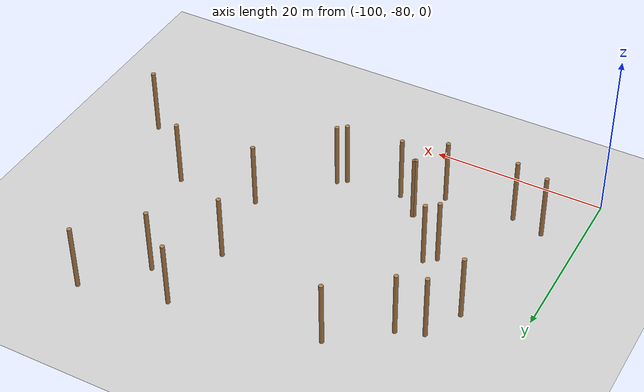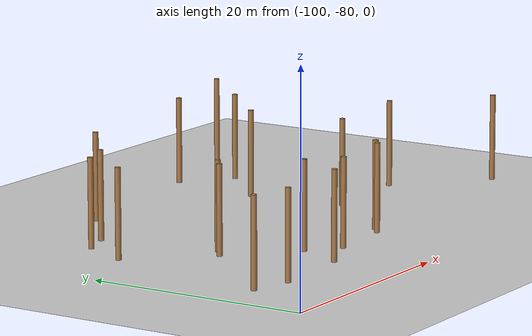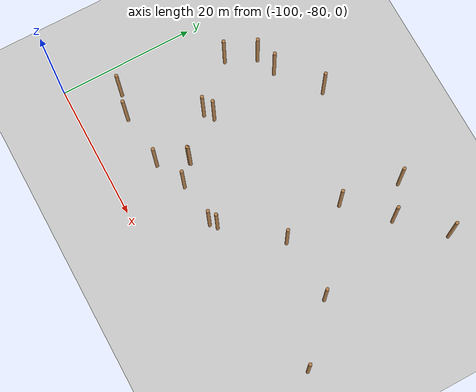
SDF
<sdf version="1.5">
 <world name="padure_tactica">
  <include><uri>model://sun</uri></include>
  <include><uri>model://ground_plane</uri></include>
  <model name="tree_159">
   <static>true</static>
   <pose>-82.38 -47.52 4.0 0 0 0</pose>
   <link name="link">
    <collision name="collision">
     <geometry><cylinder><radius>0.25</radius><length>8.0</length></cylinder></geometry>
    </collision>
    <visual name="visual">
     <geometry><cylinder><radius>0.25</radius><length>8.0</length></cylinder></geometry>
     <material>
      <script><uri>file://media/materials/scripts/gazebo.material</uri><name>Gazebo/Wood</name></script>
     </material>
    </visual>
   </link>
  </model>
  <model name="tree_163">
   <static>true</static>
   <pose>-79.41 -71.31 4.0 0 0 0</pose>
   <link name="link">
    <collision name="collision">
     <geometry><cylinder><radius>0.25</radius><length>8.0</length></cylinder></geometry>
    </collision>
    <visual name="visual">
     <geometry><cylinder><radius>0.25</radius><length>8.0</length></cylinder></geometry>
     <material>
      <script><uri>file://media/materials/scripts/gazebo.material</uri><name>Gazebo/Wood</name></script>
     </material>
    </visual>
   </link>
  </model>
  <model name="tree_214">
   <static>true</static>
   <pose>-72.94 -70.78 4.0 0 0 0</pose>
   <link name="link">
    <collision name="collision">
     <geometry><cylinder><radius>0.25</radius><length>8.0</length></cylinder></geometry>
    </collision>
    <visual name="visual">
     <geometry><cylinder><radius>0.25</radius><length>8.0</length></cylinder></geometry>
     <material>
      <script><uri>file://media/materials/scripts/gazebo.material</uri><name>Gazebo/Wood</name></script>
     </material>
    </visual>
   </link>
  </model>
  <model name="tree_272">
   <static>true</static>
   <pose>-91.20 -53.31 4.0 0 0 0</pose>
   <link name="link">
    <collision name="collision">
     <geometry><cylinder><radius>0.25</radius><length>8.0</length></cylinder></geometry>
    </collision>
    <visual name="visual">
     <geometry><cylinder><radius>0.25</radius><length>8.0</length></cylinder></geometry>
     <material>
      <script><uri>file://media/materials/scripts/gazebo.material</uri><name>Gazebo/Wood</name></script>
     </material>
    </visual>
   </link>
  </model>
  <model name="tree_345">
   <static>true</static>
   <pose>-65.56 -44.92 4.0 0 0 0</pose>
   <link name="link">
    <collision name="collision">
     <geometry><cylinder><radius>0.25</radius><length>8.0</length></cylinder></geometry>
    </collision>
    <visual name="visual">
     <geometry><cylinder><radius>0.25</radius><length>8.0</length></cylinder></geometry>
     <material>
      <script><uri>file://media/materials/scripts/gazebo.material</uri><name>Gazebo/Wood</name></script>
     </material>
    </visual>
   </link>
  </model>
  <model name="tree_361">
   <static>true</static>
   <pose>-56.21 -62.03 4.0 0 0 0</pose>
   <link name="link">
    <collision name="collision">
     <geometry><cylinder><radius>0.25</radius><length>8.0</length></cylinder></geometry>
    </collision>
    <visual name="visual">
     <geometry><cylinder><radius>0.25</radius><length>8.0</length></cylinder></geometry>
     <material>
      <script><uri>file://media/materials/scripts/gazebo.material</uri><name>Gazebo/Wood</name></script>
     </material>
    </visual>
   </link>
  </model>
  <model name="tree_371">
   <static>true</static>
   <pose>-55.77 -42.60 4.0 0 0 0</pose>
   <link name="link">
    <collision name="collision">
     <geometry><cylinder><radius>0.25</radius><length>8.0</length></cylinder></geometry>
    </collision>
    <visual name="visual">
     <geometry><cylinder><radius>0.25</radius><length>8.0</length></cylinder></geometry>
     <material>
      <script><uri>file://media/materials/scripts/gazebo.material</uri><name>Gazebo/Wood</name></script>
     </material>
    </visual>
   </link>
  </model>
  <model name="tree_387">
   <static>true</static>
   <pose>-72.01 -70.04 4.0 0 0 0</pose>
   <link name="link">
    <collision name="collision">
     <geometry><cylinder><radius>0.25</radius><length>8.0</length></cylinder></geometry>
    </collision>
    <visual name="visual">
     <geometry><cylinder><radius>0.25</radius><length>8.0</length></cylinder></geometry>
     <material>
      <script><uri>file://media/materials/scripts/gazebo.material</uri><name>Gazebo/Wood</name></script>
     </material>
    </visual>
   </link>
  </model>
  <model name="tree_556">
   <static>true</static>
   <pose>-84.04 -73.26 4.0 0 0 0</pose>
   <link name="link">
    <collision name="collision">
     <geometry><cylinder><radius>0.25</radius><length>8.0</length></cylinder></geometry>
    </collision>
    <visual name="visual">
     <geometry><cylinder><radius>0.25</radius><length>8.0</length></cylinder></geometry>
     <material>
      <script><uri>file://media/materials/scripts/gazebo.material</uri><name>Gazebo/Wood</name></script>
     </material>
    </visual>
   </link>
  </model>
  <model name="tree_613">
   <static>true</static>
   <pose>-87.48 -63.98 4.0 0 0 0</pose>
   <link name="link">
    <collision name="collision">
     <geometry><cylinder><radius>0.25</radius><length>8.0</length></cylinder></geometry>
    </collision>
    <visual name="visual">
     <geometry><cylinder><radius>0.25</radius><length>8.0</length></cylinder></geometry>
     <material>
      <script><uri>file://media/materials/scripts/gazebo.material</uri><name>Gazebo/Wood</name></script>
     </material>
    </visual>
   </link>
  </model>
  <model name="tree_630">
   <static>true</static>
   <pose>-65.60 -62.69 4.0 0 0 0</pose>
   <link name="link">
    <collision name="collision">
     <geometry><cylinder><radius>0.25</radius><length>8.0</length></cylinder></geometry>
    </collision>
    <visual name="visual">
     <geometry><cylinder><radius>0.25</radius><length>8.0</length></cylinder></geometry>
     <material>
      <script><uri>file://media/materials/scripts/gazebo.material</uri><name>Gazebo/Wood</name></script>
     </material>
    </visual>
   </link>
  </model>
  <model name="tree_637">
   <static>true</static>
   <pose>-86.24 -62.98 4.0 0 0 0</pose>
   <link name="link">
    <collision name="collision">
     <geometry><cylinder><radius>0.25</radius><length>8.0</length></cylinder></geometry>
    </collision>
    <visual name="visual">
     <geometry><cylinder><radius>0.25</radius><length>8.0</length></cylinder></geometry>
     <material>
      <script><uri>file://media/materials/scripts/gazebo.material</uri><name>Gazebo/Wood</name></script>
     </material>
    </visual>
   </link>
  </model>
  <model name="tree_651">
   <static>true</static>
   <pose>-93.22 -57.57 4.0 0 0 0</pose>
   <link name="link">
    <collision name="collision">
     <geometry><cylinder><radius>0.25</radius><length>8.0</length></cylinder></geometry>
    </collision>
    <visual name="visual">
     <geometry><cylinder><radius>0.25</radius><length>8.0</length></cylinder></geometry>
     <material>
      <script><uri>file://media/materials/scripts/gazebo.material</uri><name>Gazebo/Wood</name></script>
     </material>
    </visual>
   </link>
  </model>
  <model name="tree_719">
   <static>true</static>
   <pose>-61.31 -48.32 4.0 0 0 0</pose>
   <link name="link">
    <collision name="collision">
     <geometry><cylinder><radius>0.25</radius><length>8.0</length></cylinder></geometry>
    </collision>
    <visual name="visual">
     <geometry><cylinder><radius>0.25</radius><length>8.0</length></cylinder></geometry>
     <material>
      <script><uri>file://media/materials/scripts/gazebo.material</uri><name>Gazebo/Wood</name></script>
     </material>
    </visual>
   </link>
  </model>
  <model name="tree_856">
   <static>true</static>
   <pose>-82.03 -69.00 4.0 0 0 0</pose>
   <link name="link">
    <collision name="collision">
     <geometry><cylinder><radius>0.25</radius><length>8.0</length></cylinder></geometry>
    </collision>
    <visual name="visual">
     <geometry><cylinder><radius>0.25</radius><length>8.0</length></cylinder></geometry>
     <material>
      <script><uri>file://media/materials/scripts/gazebo.material</uri><name>Gazebo/Wood</name></script>
     </material>
    </visual>
   </link>
  </model>
  <model name="tree_867">
   <static>true</static>
   <pose>-88.27 -52.24 4.0 0 0 0</pose>
   <link name="link">
    <collision name="collision">
     <geometry><cylinder><radius>0.25</radius><length>8.0</length></cylinder></geometry>
    </collision>
    <visual name="visual">
     <geometry><cylinder><radius>0.25</radius><length>8.0</length></cylinder></geometry>
     <material>
      <script><uri>file://media/materials/scripts/gazebo.material</uri><name>Gazebo/Wood</name></script>
     </material>
    </visual>
   </link>
  </model>
  <model name="tree_893">
   <static>true</static>
   <pose>-92.04 -73.76 4.0 0 0 0</pose>
   <link name="link">
    <collision name="collision">
     <geometry><cylinder><radius>0.25</radius><length>8.0</length></cylinder></geometry>
    </collision>
    <visual name="visual">
     <geometry><cylinder><radius>0.25</radius><length>8.0</length></cylinder></geometry>
     <material>
      <script><uri>file://media/materials/scripts/gazebo.material</uri><name>Gazebo/Wood</name></script>
     </material>
    </visual>
   </link>
  </model>
  <model name="tree_933">
   <static>true</static>
   <pose>-95.76 -72.84 4.0 0 0 0</pose>
   <link name="link">
    <collision name="collision">
     <geometry><cylinder><radius>0.25</radius><length>8.0</length></cylinder></geometry>
    </collision>
    <visual name="visual">
     <geometry><cylinder><radius>0.25</radius><length>8.0</length></cylinder></geometry>
     <material>
      <script><uri>file://media/materials/scripts/gazebo.material</uri><name>Gazebo/Wood</name></script>
     </material>
    </visual>
   </link>
  </model>
  <model name="tree_1056">
   <static>true</static>
   <pose>-48.75 -68.75 4.0 0 0 0</pose>
   <link name="link">
    <collision name="collision">
     <geometry><cylinder><radius>0.25</radius><length>8.0</length></cylinder></geometry>
    </collision>
    <visual name="visual">
     <geometry><cylinder><radius>0.25</radius><length>8.0</length></cylinder></geometry>
     <material>
      <script><uri>file://media/materials/scripts/gazebo.material</uri><name>Gazebo/Wood</name></script>
     </material>
    </visual>
   </link>
  </model>
  <model name="tree_1091">
   <static>true</static>
   <pose>-82.15 -69.08 4.0 0 0 0</pose>
   <link name="link">
    <collision name="collision">
     <geometry><cylinder><radius>0.25</radius><length>8.0</length></cylinder></geometry>
    </collision>
    <visual name="visual">
     <geometry><cylinder><radius>0.25</radius><length>8.0</length></cylinder></geometry>
     <material>
      <script><uri>file://media/materials/scripts/gazebo.material</uri><name>Gazebo/Wood</name></script>
     </material>
    </visual>
   </link>
  </model>
  <model name="tree_1119">
   <static>true</static>
   <pose>-66.79 -53.67 4.0 0 0 0</pose>
   <link name="link">
    <collision name="collision">
     <geometry><cylinder><radius>0.25</radius><length>8.0</length></cylinder></geometry>
    </collision>
    <visual name="visual">
     <geometry><cylinder><radius>0.25</radius><length>8.0</length></cylinder></geometry>
     <material>
      <script><uri>file://media/materials/scripts/gazebo.material</uri><name>Gazebo/Wood</name></script>
     </material>
    </visual>
   </link>
  </model>
 </world>
</sdf>
